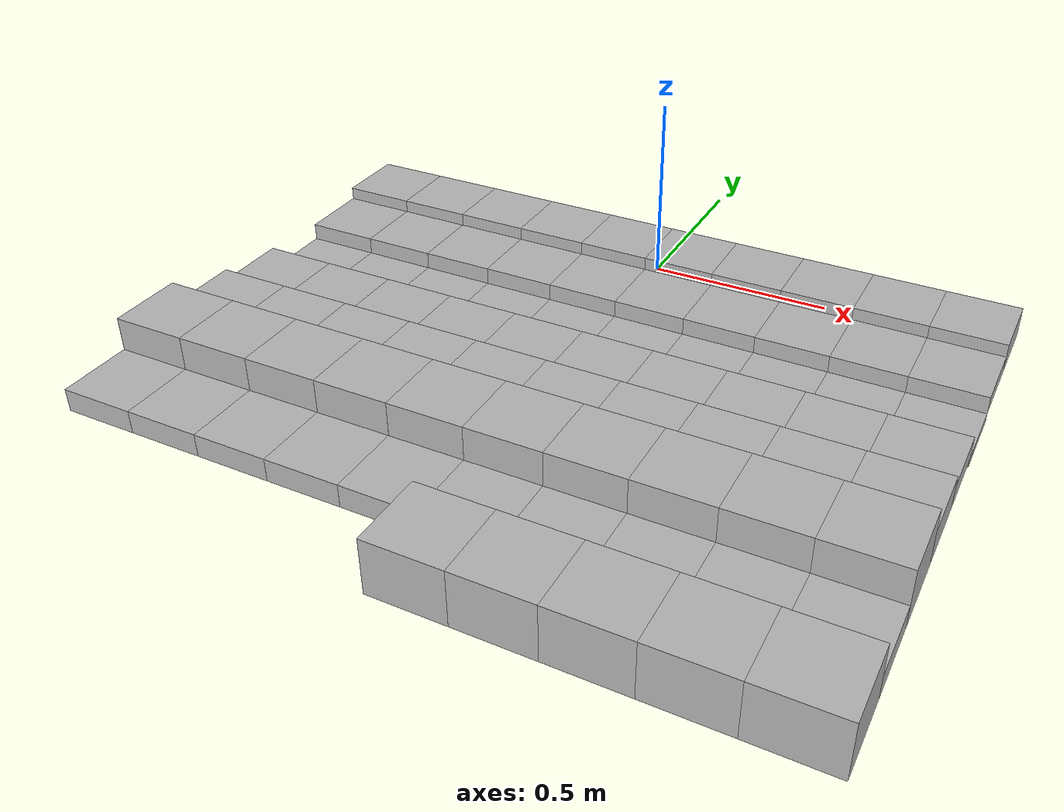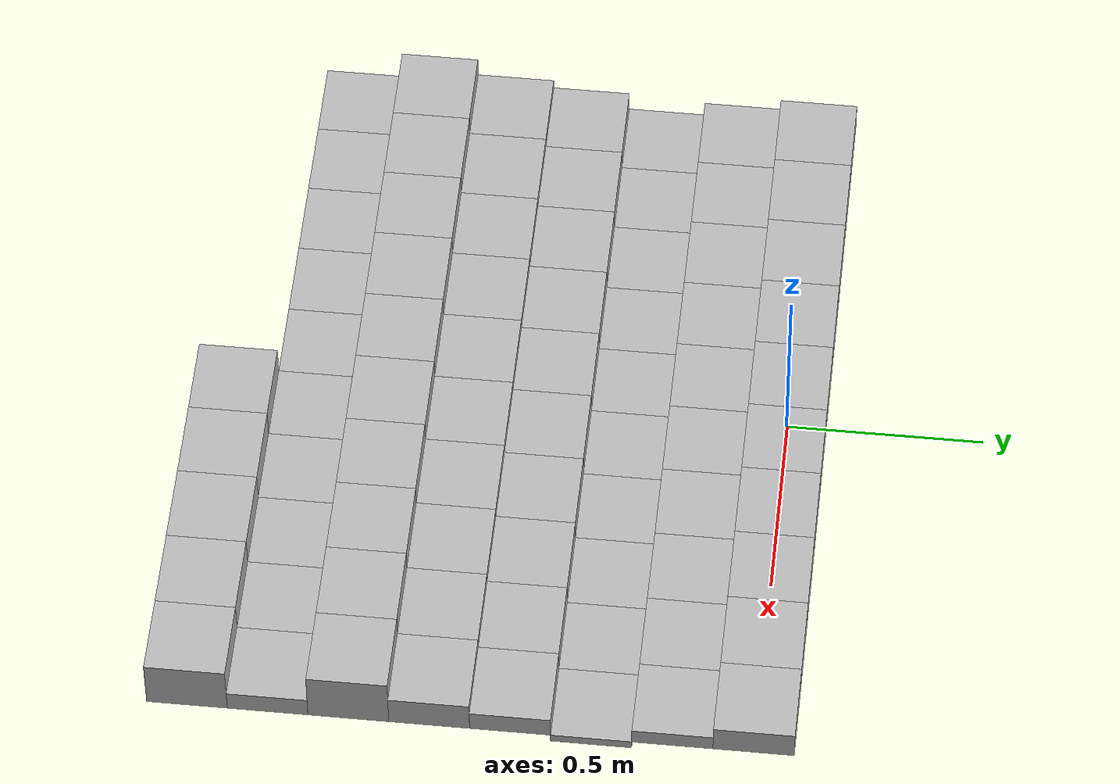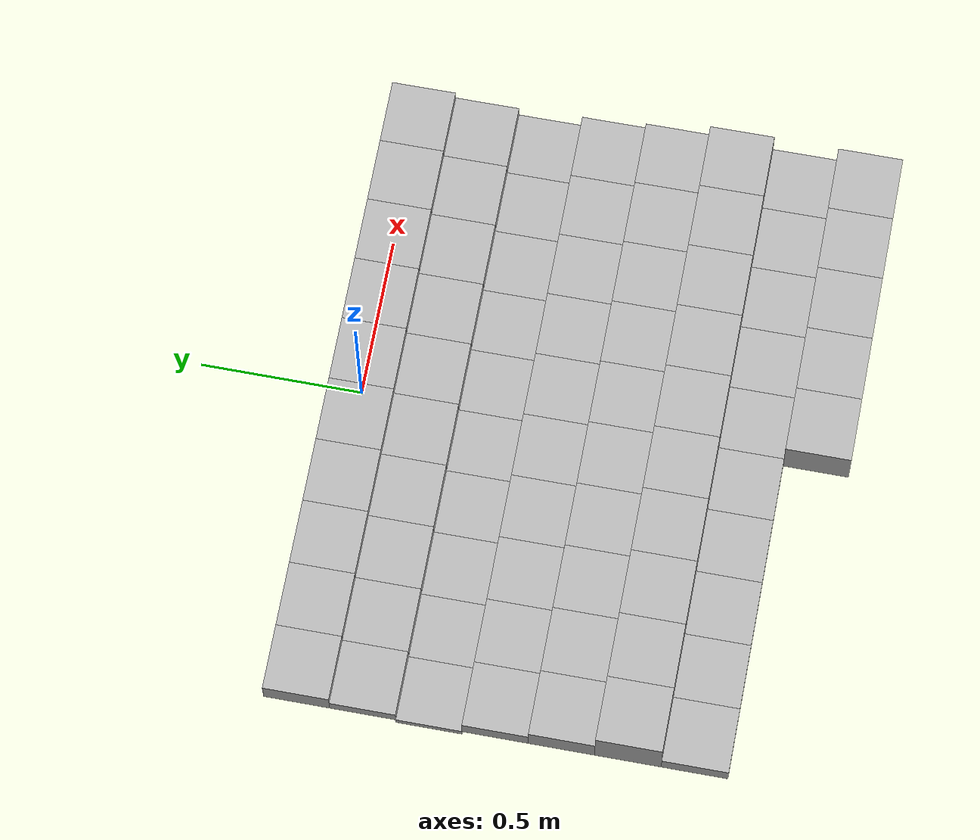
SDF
<sdf version="1.6">
 <model name="Terrain">
  <static>true</static>
  <link name="box_0_0">
   <pose>-0.9 0.0 0.041543660757 0 0 0</pose>
   <inertial>
    <mass>1.0</mass>
    <inertia><ixx>0.0</ixx><ixy>0.0</ixy><ixz>0.0</ixz><iyy>0.0</iyy><iyz>0.0</iyz><izz>0.0</izz></inertia>
   </inertial>
   <collision name="collision"><geometry><box><size>0.2 0.2 0.083087321514</size></box></geometry></collision>
   <visual name="visual"><geometry><box><size>0.2 0.2 0.083087321514</size></box></geometry></visual>
  </link>
  <link name="box_0_1">
   <pose>-0.7 0.0 0.041543660757 0 0 0</pose>
   <inertial>
    <mass>1.0</mass>
    <inertia><ixx>0.0</ixx><ixy>0.0</ixy><ixz>0.0</ixz><iyy>0.0</iyy><iyz>0.0</iyz><izz>0.0</izz></inertia>
   </inertial>
   <collision name="collision"><geometry><box><size>0.2 0.2 0.083087321514</size></box></geometry></collision>
   <visual name="visual"><geometry><box><size>0.2 0.2 0.083087321514</size></box></geometry></visual>
  </link>
  <link name="box_0_2">
   <pose>-0.5 0.0 0.041543660757 0 0 0</pose>
   <inertial>
    <mass>1.0</mass>
    <inertia><ixx>0.0</ixx><ixy>0.0</ixy><ixz>0.0</ixz><iyy>0.0</iyy><iyz>0.0</iyz><izz>0.0</izz></inertia>
   </inertial>
   <collision name="collision"><geometry><box><size>0.2 0.2 0.083087321514</size></box></geometry></collision>
   <visual name="visual"><geometry><box><size>0.2 0.2 0.083087321514</size></box></geometry></visual>
  </link>
  <link name="box_0_3">
   <pose>-0.3 0.0 0.041543660757 0 0 0</pose>
   <inertial>
    <mass>1.0</mass>
    <inertia><ixx>0.0</ixx><ixy>0.0</ixy><ixz>0.0</ixz><iyy>0.0</iyy><iyz>0.0</iyz><izz>0.0</izz></inertia>
   </inertial>
   <collision name="collision"><geometry><box><size>0.2 0.2 0.083087321514</size></box></geometry></collision>
   <visual name="visual"><geometry><box><size>0.2 0.2 0.083087321514</size></box></geometry></visual>
  </link>
  <link name="box_0_4">
   <pose>-0.1 0.0 0.041543660757 0 0 0</pose>
   <inertial>
    <mass>1.0</mass>
    <inertia><ixx>0.0</ixx><ixy>0.0</ixy><ixz>0.0</ixz><iyy>0.0</iyy><iyz>0.0</iyz><izz>0.0</izz></inertia>
   </inertial>
   <collision name="collision"><geometry><box><size>0.2 0.2 0.083087321514</size></box></geometry></collision>
   <visual name="visual"><geometry><box><size>0.2 0.2 0.083087321514</size></box></geometry></visual>
  </link>
  <link name="box_0_5">
   <pose>0.1 0.0 0.041543660757 0 0 0</pose>
   <inertial>
    <mass>1.0</mass>
    <inertia><ixx>0.0</ixx><ixy>0.0</ixy><ixz>0.0</ixz><iyy>0.0</iyy><iyz>0.0</iyz><izz>0.0</izz></inertia>
   </inertial>
   <collision name="collision"><geometry><box><size>0.2 0.2 0.083087321514</size></box></geometry></collision>
   <visual name="visual"><geometry><box><size>0.2 0.2 0.083087321514</size></box></geometry></visual>
  </link>
  <link name="box_0_6">
   <pose>0.3 0.0 0.041543660757 0 0 0</pose>
   <inertial>
    <mass>1.0</mass>
    <inertia><ixx>0.0</ixx><ixy>0.0</ixy><ixz>0.0</ixz><iyy>0.0</iyy><iyz>0.0</iyz><izz>0.0</izz></inertia>
   </inertial>
   <collision name="collision"><geometry><box><size>0.2 0.2 0.083087321514</size></box></geometry></collision>
   <visual name="visual"><geometry><box><size>0.2 0.2 0.083087321514</size></box></geometry></visual>
  </link>
  <link name="box_0_7">
   <pose>0.5 0.0 0.041543660757 0 0 0</pose>
   <inertial>
    <mass>1.0</mass>
    <inertia><ixx>0.0</ixx><ixy>0.0</ixy><ixz>0.0</ixz><iyy>0.0</iyy><iyz>0.0</iyz><izz>0.0</izz></inertia>
   </inertial>
   <collision name="collision"><geometry><box><size>0.2 0.2 0.083087321514</size></box></geometry></collision>
   <visual name="visual"><geometry><box><size>0.2 0.2 0.083087321514</size></box></geometry></visual>
  </link>
  <link name="box_0_8">
   <pose>0.7 0.0 0.041543660757 0 0 0</pose>
   <inertial>
    <mass>1.0</mass>
    <inertia><ixx>0.0</ixx><ixy>0.0</ixy><ixz>0.0</ixz><iyy>0.0</iyy><iyz>0.0</iyz><izz>0.0</izz></inertia>
   </inertial>
   <collision name="collision"><geometry><box><size>0.2 0.2 0.083087321514</size></box></geometry></collision>
   <visual name="visual"><geometry><box><size>0.2 0.2 0.083087321514</size></box></geometry></visual>
  </link>
  <link name="box_0_9">
   <pose>0.9 0.0 0.041543660757 0 0 0</pose>
   <inertial>
    <mass>1.0</mass>
    <inertia><ixx>0.0</ixx><ixy>0.0</ixy><ixz>0.0</ixz><iyy>0.0</iyy><iyz>0.0</iyz><izz>0.0</izz></inertia>
   </inertial>
   <collision name="collision"><geometry><box><size>0.2 0.2 0.083087321514</size></box></geometry></collision>
   <visual name="visual"><geometry><box><size>0.2 0.2 0.083087321514</size></box></geometry></visual>
  </link>
  <link name="box_1_0">
   <pose>-0.9 -0.2 0.0236763575614 0 0 0</pose>
   <inertial>
    <mass>1.0</mass>
    <inertia><ixx>0.0</ixx><ixy>0.0</ixy><ixz>0.0</ixz><iyy>0.0</iyy><iyz>0.0</iyz><izz>0.0</izz></inertia>
   </inertial>
   <collision name="collision"><geometry><box><size>0.2 0.2 0.0473527151228</size></box></geometry></collision>
   <visual name="visual"><geometry><box><size>0.2 0.2 0.0473527151228</size></box></geometry></visual>
  </link>
  <link name="box_1_1">
   <pose>-0.7 -0.2 0.0236763575614 0 0 0</pose>
   <inertial>
    <mass>1.0</mass>
    <inertia><ixx>0.0</ixx><ixy>0.0</ixy><ixz>0.0</ixz><iyy>0.0</iyy><iyz>0.0</iyz><izz>0.0</izz></inertia>
   </inertial>
   <collision name="collision"><geometry><box><size>0.2 0.2 0.0473527151228</size></box></geometry></collision>
   <visual name="visual"><geometry><box><size>0.2 0.2 0.0473527151228</size></box></geometry></visual>
  </link>
  <link name="box_1_2">
   <pose>-0.5 -0.2 0.0236763575614 0 0 0</pose>
   <inertial>
    <mass>1.0</mass>
    <inertia><ixx>0.0</ixx><ixy>0.0</ixy><ixz>0.0</ixz><iyy>0.0</iyy><iyz>0.0</iyz><izz>0.0</izz></inertia>
   </inertial>
   <collision name="collision"><geometry><box><size>0.2 0.2 0.0473527151228</size></box></geometry></collision>
   <visual name="visual"><geometry><box><size>0.2 0.2 0.0473527151228</size></box></geometry></visual>
  </link>
  <link name="box_1_3">
   <pose>-0.3 -0.2 0.0236763575614 0 0 0</pose>
   <inertial>
    <mass>1.0</mass>
    <inertia><ixx>0.0</ixx><ixy>0.0</ixy><ixz>0.0</ixz><iyy>0.0</iyy><iyz>0.0</iyz><izz>0.0</izz></inertia>
   </inertial>
   <collision name="collision"><geometry><box><size>0.2 0.2 0.0473527151228</size></box></geometry></collision>
   <visual name="visual"><geometry><box><size>0.2 0.2 0.0473527151228</size></box></geometry></visual>
  </link>
  <link name="box_1_4">
   <pose>-0.1 -0.2 0.0236763575614 0 0 0</pose>
   <inertial>
    <mass>1.0</mass>
    <inertia><ixx>0.0</ixx><ixy>0.0</ixy><ixz>0.0</ixz><iyy>0.0</iyy><iyz>0.0</iyz><izz>0.0</izz></inertia>
   </inertial>
   <collision name="collision"><geometry><box><size>0.2 0.2 0.0473527151228</size></box></geometry></collision>
   <visual name="visual"><geometry><box><size>0.2 0.2 0.0473527151228</size></box></geometry></visual>
  </link>
  <link name="box_1_5">
   <pose>0.1 -0.2 0.0236763575614 0 0 0</pose>
   <inertial>
    <mass>1.0</mass>
    <inertia><ixx>0.0</ixx><ixy>0.0</ixy><ixz>0.0</ixz><iyy>0.0</iyy><iyz>0.0</iyz><izz>0.0</izz></inertia>
   </inertial>
   <collision name="collision"><geometry><box><size>0.2 0.2 0.0473527151228</size></box></geometry></collision>
   <visual name="visual"><geometry><box><size>0.2 0.2 0.0473527151228</size></box></geometry></visual>
  </link>
  <link name="box_1_6">
   <pose>0.3 -0.2 0.0236763575614 0 0 0</pose>
   <inertial>
    <mass>1.0</mass>
    <inertia><ixx>0.0</ixx><ixy>0.0</ixy><ixz>0.0</ixz><iyy>0.0</iyy><iyz>0.0</iyz><izz>0.0</izz></inertia>
   </inertial>
   <collision name="collision"><geometry><box><size>0.2 0.2 0.0473527151228</size></box></geometry></collision>
   <visual name="visual"><geometry><box><size>0.2 0.2 0.0473527151228</size></box></geometry></visual>
  </link>
  <link name="box_1_7">
   <pose>0.5 -0.2 0.0236763575614 0 0 0</pose>
   <inertial>
    <mass>1.0</mass>
    <inertia><ixx>0.0</ixx><ixy>0.0</ixy><ixz>0.0</ixz><iyy>0.0</iyy><iyz>0.0</iyz><izz>0.0</izz></inertia>
   </inertial>
   <collision name="collision"><geometry><box><size>0.2 0.2 0.0473527151228</size></box></geometry></collision>
   <visual name="visual"><geometry><box><size>0.2 0.2 0.0473527151228</size></box></geometry></visual>
  </link>
  <link name="box_1_8">
   <pose>0.7 -0.2 0.0236763575614 0 0 0</pose>
   <inertial>
    <mass>1.0</mass>
    <inertia><ixx>0.0</ixx><ixy>0.0</ixy><ixz>0.0</ixz><iyy>0.0</iyy><iyz>0.0</iyz><izz>0.0</izz></inertia>
   </inertial>
   <collision name="collision"><geometry><box><size>0.2 0.2 0.0473527151228</size></box></geometry></collision>
   <visual name="visual"><geometry><box><size>0.2 0.2 0.0473527151228</size></box></geometry></visual>
  </link>
  <link name="box_1_9">
   <pose>0.9 -0.2 0.0236763575614 0 0 0</pose>
   <inertial>
    <mass>1.0</mass>
    <inertia><ixx>0.0</ixx><ixy>0.0</ixy><ixz>0.0</ixz><iyy>0.0</iyy><iyz>0.0</iyz><izz>0.0</izz></inertia>
   </inertial>
   <collision name="collision"><geometry><box><size>0.2 0.2 0.0473527151228</size></box></geometry></collision>
   <visual name="visual"><geometry><box><size>0.2 0.2 0.0473527151228</size></box></geometry></visual>
  </link>
  <link name="box_2_0">
   <pose>-0.9 -0.4 -0.0126841246959 0 0 0</pose>
   <inertial>
    <mass>1.0</mass>
    <inertia><ixx>0.0</ixx><ixy>0.0</ixy><ixz>0.0</ixz><iyy>0.0</iyy><iyz>0.0</iyz><izz>0.0</izz></inertia>
   </inertial>
   <collision name="collision"><geometry><box><size>0.2 0.2 -0.0253682493918</size></box></geometry></collision>
   <visual name="visual"><geometry><box><size>0.2 0.2 -0.0253682493918</size></box></geometry></visual>
  </link>
  <link name="box_2_1">
   <pose>-0.7 -0.4 -0.0126841246959 0 0 0</pose>
   <inertial>
    <mass>1.0</mass>
    <inertia><ixx>0.0</ixx><ixy>0.0</ixy><ixz>0.0</ixz><iyy>0.0</iyy><iyz>0.0</iyz><izz>0.0</izz></inertia>
   </inertial>
   <collision name="collision"><geometry><box><size>0.2 0.2 -0.0253682493918</size></box></geometry></collision>
   <visual name="visual"><geometry><box><size>0.2 0.2 -0.0253682493918</size></box></geometry></visual>
  </link>
  <link name="box_2_2">
   <pose>-0.5 -0.4 -0.0126841246959 0 0 0</pose>
   <inertial>
    <mass>1.0</mass>
    <inertia><ixx>0.0</ixx><ixy>0.0</ixy><ixz>0.0</ixz><iyy>0.0</iyy><iyz>0.0</iyz><izz>0.0</izz></inertia>
   </inertial>
   <collision name="collision"><geometry><box><size>0.2 0.2 -0.0253682493918</size></box></geometry></collision>
   <visual name="visual"><geometry><box><size>0.2 0.2 -0.0253682493918</size></box></geometry></visual>
  </link>
  <link name="box_2_3">
   <pose>-0.3 -0.4 -0.0126841246959 0 0 0</pose>
   <inertial>
    <mass>1.0</mass>
    <inertia><ixx>0.0</ixx><ixy>0.0</ixy><ixz>0.0</ixz><iyy>0.0</iyy><iyz>0.0</iyz><izz>0.0</izz></inertia>
   </inertial>
   <collision name="collision"><geometry><box><size>0.2 0.2 -0.0253682493918</size></box></geometry></collision>
   <visual name="visual"><geometry><box><size>0.2 0.2 -0.0253682493918</size></box></geometry></visual>
  </link>
  <link name="box_2_4">
   <pose>-0.1 -0.4 -0.0126841246959 0 0 0</pose>
   <inertial>
    <mass>1.0</mass>
    <inertia><ixx>0.0</ixx><ixy>0.0</ixy><ixz>0.0</ixz><iyy>0.0</iyy><iyz>0.0</iyz><izz>0.0</izz></inertia>
   </inertial>
   <collision name="collision"><geometry><box><size>0.2 0.2 -0.0253682493918</size></box></geometry></collision>
   <visual name="visual"><geometry><box><size>0.2 0.2 -0.0253682493918</size></box></geometry></visual>
  </link>
  <link name="box_2_5">
   <pose>0.1 -0.4 -0.0126841246959 0 0 0</pose>
   <inertial>
    <mass>1.0</mass>
    <inertia><ixx>0.0</ixx><ixy>0.0</ixy><ixz>0.0</ixz><iyy>0.0</iyy><iyz>0.0</iyz><izz>0.0</izz></inertia>
   </inertial>
   <collision name="collision"><geometry><box><size>0.2 0.2 -0.0253682493918</size></box></geometry></collision>
   <visual name="visual"><geometry><box><size>0.2 0.2 -0.0253682493918</size></box></geometry></visual>
  </link>
  <link name="box_2_6">
   <pose>0.3 -0.4 -0.0126841246959 0 0 0</pose>
   <inertial>
    <mass>1.0</mass>
    <inertia><ixx>0.0</ixx><ixy>0.0</ixy><ixz>0.0</ixz><iyy>0.0</iyy><iyz>0.0</iyz><izz>0.0</izz></inertia>
   </inertial>
   <collision name="collision"><geometry><box><size>0.2 0.2 -0.0253682493918</size></box></geometry></collision>
   <visual name="visual"><geometry><box><size>0.2 0.2 -0.0253682493918</size></box></geometry></visual>
  </link>
  <link name="box_2_7">
   <pose>0.5 -0.4 -0.0126841246959 0 0 0</pose>
   <inertial>
    <mass>1.0</mass>
    <inertia><ixx>0.0</ixx><ixy>0.0</ixy><ixz>0.0</ixz><iyy>0.0</iyy><iyz>0.0</iyz><izz>0.0</izz></inertia>
   </inertial>
   <collision name="collision"><geometry><box><size>0.2 0.2 -0.0253682493918</size></box></geometry></collision>
   <visual name="visual"><geometry><box><size>0.2 0.2 -0.0253682493918</size></box></geometry></visual>
  </link>
  <link name="box_2_8">
   <pose>0.7 -0.4 -0.0126841246959 0 0 0</pose>
   <inertial>
    <mass>1.0</mass>
    <inertia><ixx>0.0</ixx><ixy>0.0</ixy><ixz>0.0</ixz><iyy>0.0</iyy><iyz>0.0</iyz><izz>0.0</izz></inertia>
   </inertial>
   <collision name="collision"><geometry><box><size>0.2 0.2 -0.0253682493918</size></box></geometry></collision>
   <visual name="visual"><geometry><box><size>0.2 0.2 -0.0253682493918</size></box></geometry></visual>
  </link>
  <link name="box_2_9">
   <pose>0.9 -0.4 -0.0126841246959 0 0 0</pose>
   <inertial>
    <mass>1.0</mass>
    <inertia><ixx>0.0</ixx><ixy>0.0</ixy><ixz>0.0</ixz><iyy>0.0</iyy><iyz>0.0</iyz><izz>0.0</izz></inertia>
   </inertial>
   <collision name="collision"><geometry><box><size>0.2 0.2 -0.0253682493918</size></box></geometry></collision>
   <visual name="visual"><geometry><box><size>0.2 0.2 -0.0253682493918</size></box></geometry></visual>
  </link>
  <link name="box_3_0">
   <pose>-0.9 -0.6 0.0315941614669 0 0 0</pose>
   <inertial>
    <mass>1.0</mass>
    <inertia><ixx>0.0</ixx><ixy>0.0</ixy><ixz>0.0</ixz><iyy>0.0</iyy><iyz>0.0</iyz><izz>0.0</izz></inertia>
   </inertial>
   <collision name="collision"><geometry><box><size>0.2 0.2 0.0631883229338</size></box></geometry></collision>
   <visual name="visual"><geometry><box><size>0.2 0.2 0.0631883229338</size></box></geometry></visual>
  </link>
  <link name="box_3_1">
   <pose>-0.7 -0.6 0.0315941614669 0 0 0</pose>
   <inertial>
    <mass>1.0</mass>
    <inertia><ixx>0.0</ixx><ixy>0.0</ixy><ixz>0.0</ixz><iyy>0.0</iyy><iyz>0.0</iyz><izz>0.0</izz></inertia>
   </inertial>
   <collision name="collision"><geometry><box><size>0.2 0.2 0.0631883229338</size></box></geometry></collision>
   <visual name="visual"><geometry><box><size>0.2 0.2 0.0631883229338</size></box></geometry></visual>
  </link>
  <link name="box_3_2">
   <pose>-0.5 -0.6 0.0315941614669 0 0 0</pose>
   <inertial>
    <mass>1.0</mass>
    <inertia><ixx>0.0</ixx><ixy>0.0</ixy><ixz>0.0</ixz><iyy>0.0</iyy><iyz>0.0</iyz><izz>0.0</izz></inertia>
   </inertial>
   <collision name="collision"><geometry><box><size>0.2 0.2 0.0631883229338</size></box></geometry></collision>
   <visual name="visual"><geometry><box><size>0.2 0.2 0.0631883229338</size></box></geometry></visual>
  </link>
  <link name="box_3_3">
   <pose>-0.3 -0.6 0.0315941614669 0 0 0</pose>
   <inertial>
    <mass>1.0</mass>
    <inertia><ixx>0.0</ixx><ixy>0.0</ixy><ixz>0.0</ixz><iyy>0.0</iyy><iyz>0.0</iyz><izz>0.0</izz></inertia>
   </inertial>
   <collision name="collision"><geometry><box><size>0.2 0.2 0.0631883229338</size></box></geometry></collision>
   <visual name="visual"><geometry><box><size>0.2 0.2 0.0631883229338</size></box></geometry></visual>
  </link>
  <link name="box_3_4">
   <pose>-0.1 -0.6 0.0315941614669 0 0 0</pose>
   <inertial>
    <mass>1.0</mass>
    <inertia><ixx>0.0</ixx><ixy>0.0</ixy><ixz>0.0</ixz><iyy>0.0</iyy><iyz>0.0</iyz><izz>0.0</izz></inertia>
   </inertial>
   <collision name="collision"><geometry><box><size>0.2 0.2 0.0631883229338</size></box></geometry></collision>
   <visual name="visual"><geometry><box><size>0.2 0.2 0.0631883229338</size></box></geometry></visual>
  </link>
  <link name="box_3_5">
   <pose>0.1 -0.6 0.0315941614669 0 0 0</pose>
   <inertial>
    <mass>1.0</mass>
    <inertia><ixx>0.0</ixx><ixy>0.0</ixy><ixz>0.0</ixz><iyy>0.0</iyy><iyz>0.0</iyz><izz>0.0</izz></inertia>
   </inertial>
   <collision name="collision"><geometry><box><size>0.2 0.2 0.0631883229338</size></box></geometry></collision>
   <visual name="visual"><geometry><box><size>0.2 0.2 0.0631883229338</size></box></geometry></visual>
  </link>
  <link name="box_3_6">
   <pose>0.3 -0.6 0.0315941614669 0 0 0</pose>
   <inertial>
    <mass>1.0</mass>
    <inertia><ixx>0.0</ixx><ixy>0.0</ixy><ixz>0.0</ixz><iyy>0.0</iyy><iyz>0.0</iyz><izz>0.0</izz></inertia>
   </inertial>
   <collision name="collision"><geometry><box><size>0.2 0.2 0.0631883229338</size></box></geometry></collision>
   <visual name="visual"><geometry><box><size>0.2 0.2 0.0631883229338</size></box></geometry></visual>
  </link>
  <link name="box_3_7">
   <pose>0.5 -0.6 0.0315941614669 0 0 0</pose>
   <inertial>
    <mass>1.0</mass>
    <inertia><ixx>0.0</ixx><ixy>0.0</ixy><ixz>0.0</ixz><iyy>0.0</iyy><iyz>0.0</iyz><izz>0.0</izz></inertia>
   </inertial>
   <collision name="collision"><geometry><box><size>0.2 0.2 0.0631883229338</size></box></geometry></collision>
   <visual name="visual"><geometry><box><size>0.2 0.2 0.0631883229338</size></box></geometry></visual>
  </link>
  <link name="box_3_8">
   <pose>0.7 -0.6 0.0315941614669 0 0 0</pose>
   <inertial>
    <mass>1.0</mass>
    <inertia><ixx>0.0</ixx><ixy>0.0</ixy><ixz>0.0</ixz><iyy>0.0</iyy><iyz>0.0</iyz><izz>0.0</izz></inertia>
   </inertial>
   <collision name="collision"><geometry><box><size>0.2 0.2 0.0631883229338</size></box></geometry></collision>
   <visual name="visual"><geometry><box><size>0.2 0.2 0.0631883229338</size></box></geometry></visual>
  </link>
  <link name="box_3_9">
   <pose>0.9 -0.6 0.0315941614669 0 0 0</pose>
   <inertial>
    <mass>1.0</mass>
    <inertia><ixx>0.0</ixx><ixy>0.0</ixy><ixz>0.0</ixz><iyy>0.0</iyy><iyz>0.0</iyz><izz>0.0</izz></inertia>
   </inertial>
   <collision name="collision"><geometry><box><size>0.2 0.2 0.0631883229338</size></box></geometry></collision>
   <visual name="visual"><geometry><box><size>0.2 0.2 0.0631883229338</size></box></geometry></visual>
  </link>
  <link name="box_4_0">
   <pose>-0.9 -0.8 0.0463323221949 0 0 0</pose>
   <inertial>
    <mass>1.0</mass>
    <inertia><ixx>0.0</ixx><ixy>0.0</ixy><ixz>0.0</ixz><iyy>0.0</iyy><iyz>0.0</iyz><izz>0.0</izz></inertia>
   </inertial>
   <collision name="collision"><geometry><box><size>0.2 0.2 0.0926646443898</size></box></geometry></collision>
   <visual name="visual"><geometry><box><size>0.2 0.2 0.0926646443898</size></box></geometry></visual>
  </link>
  <link name="box_4_1">
   <pose>-0.7 -0.8 0.0463323221949 0 0 0</pose>
   <inertial>
    <mass>1.0</mass>
    <inertia><ixx>0.0</ixx><ixy>0.0</ixy><ixz>0.0</ixz><iyy>0.0</iyy><iyz>0.0</iyz><izz>0.0</izz></inertia>
   </inertial>
   <collision name="collision"><geometry><box><size>0.2 0.2 0.0926646443898</size></box></geometry></collision>
   <visual name="visual"><geometry><box><size>0.2 0.2 0.0926646443898</size></box></geometry></visual>
  </link>
  <link name="box_4_2">
   <pose>-0.5 -0.8 0.0463323221949 0 0 0</pose>
   <inertial>
    <mass>1.0</mass>
    <inertia><ixx>0.0</ixx><ixy>0.0</ixy><ixz>0.0</ixz><iyy>0.0</iyy><iyz>0.0</iyz><izz>0.0</izz></inertia>
   </inertial>
   <collision name="collision"><geometry><box><size>0.2 0.2 0.0926646443898</size></box></geometry></collision>
   <visual name="visual"><geometry><box><size>0.2 0.2 0.0926646443898</size></box></geometry></visual>
  </link>
  <link name="box_4_3">
   <pose>-0.3 -0.8 0.0463323221949 0 0 0</pose>
   <inertial>
    <mass>1.0</mass>
    <inertia><ixx>0.0</ixx><ixy>0.0</ixy><ixz>0.0</ixz><iyy>0.0</iyy><iyz>0.0</iyz><izz>0.0</izz></inertia>
   </inertial>
   <collision name="collision"><geometry><box><size>0.2 0.2 0.0926646443898</size></box></geometry></collision>
   <visual name="visual"><geometry><box><size>0.2 0.2 0.0926646443898</size></box></geometry></visual>
  </link>
  <link name="box_4_4">
   <pose>-0.1 -0.8 0.0463323221949 0 0 0</pose>
   <inertial>
    <mass>1.0</mass>
    <inertia><ixx>0.0</ixx><ixy>0.0</ixy><ixz>0.0</ixz><iyy>0.0</iyy><iyz>0.0</iyz><izz>0.0</izz></inertia>
   </inertial>
   <collision name="collision"><geometry><box><size>0.2 0.2 0.0926646443898</size></box></geometry></collision>
   <visual name="visual"><geometry><box><size>0.2 0.2 0.0926646443898</size></box></geometry></visual>
  </link>
  <link name="box_4_5">
   <pose>0.1 -0.8 0.0463323221949 0 0 0</pose>
   <inertial>
    <mass>1.0</mass>
    <inertia><ixx>0.0</ixx><ixy>0.0</ixy><ixz>0.0</ixz><iyy>0.0</iyy><iyz>0.0</iyz><izz>0.0</izz></inertia>
   </inertial>
   <collision name="collision"><geometry><box><size>0.2 0.2 0.0926646443898</size></box></geometry></collision>
   <visual name="visual"><geometry><box><size>0.2 0.2 0.0926646443898</size></box></geometry></visual>
  </link>
  <link name="box_4_6">
   <pose>0.3 -0.8 0.0463323221949 0 0 0</pose>
   <inertial>
    <mass>1.0</mass>
    <inertia><ixx>0.0</ixx><ixy>0.0</ixy><ixz>0.0</ixz><iyy>0.0</iyy><iyz>0.0</iyz><izz>0.0</izz></inertia>
   </inertial>
   <collision name="collision"><geometry><box><size>0.2 0.2 0.0926646443898</size></box></geometry></collision>
   <visual name="visual"><geometry><box><size>0.2 0.2 0.0926646443898</size></box></geometry></visual>
  </link>
  <link name="box_4_7">
   <pose>0.5 -0.8 0.0463323221949 0 0 0</pose>
   <inertial>
    <mass>1.0</mass>
    <inertia><ixx>0.0</ixx><ixy>0.0</ixy><ixz>0.0</ixz><iyy>0.0</iyy><iyz>0.0</iyz><izz>0.0</izz></inertia>
   </inertial>
   <collision name="collision"><geometry><box><size>0.2 0.2 0.0926646443898</size></box></geometry></collision>
   <visual name="visual"><geometry><box><size>0.2 0.2 0.0926646443898</size></box></geometry></visual>
  </link>
  <link name="box_4_8">
   <pose>0.7 -0.8 0.0463323221949 0 0 0</pose>
   <inertial>
    <mass>1.0</mass>
    <inertia><ixx>0.0</ixx><ixy>0.0</ixy><ixz>0.0</ixz><iyy>0.0</iyy><iyz>0.0</iyz><izz>0.0</izz></inertia>
   </inertial>
   <collision name="collision"><geometry><box><size>0.2 0.2 0.0926646443898</size></box></geometry></collision>
   <visual name="visual"><geometry><box><size>0.2 0.2 0.0926646443898</size></box></geometry></visual>
  </link>
  <link name="box_4_9">
   <pose>0.9 -0.8 0.0463323221949 0 0 0</pose>
   <inertial>
    <mass>1.0</mass>
    <inertia><ixx>0.0</ixx><ixy>0.0</ixy><ixz>0.0</ixz><iyy>0.0</iyy><iyz>0.0</iyz><izz>0.0</izz></inertia>
   </inertial>
   <collision name="collision"><geometry><box><size>0.2 0.2 0.0926646443898</size></box></geometry></collision>
   <visual name="visual"><geometry><box><size>0.2 0.2 0.0926646443898</size></box></geometry></visual>
  </link>
  <link name="box_5_0">
   <pose>-0.9 -1.0 0.0767504613067 0 0 0</pose>
   <inertial>
    <mass>1.0</mass>
    <inertia><ixx>0.0</ixx><ixy>0.0</ixy><ixz>0.0</ixz><iyy>0.0</iyy><iyz>0.0</iyz><izz>0.0</izz></inertia>
   </inertial>
   <collision name="collision"><geometry><box><size>0.2 0.2 0.153500922613</size></box></geometry></collision>
   <visual name="visual"><geometry><box><size>0.2 0.2 0.153500922613</size></box></geometry></visual>
  </link>
  <link name="box_5_1">
   <pose>-0.7 -1.0 0.0767504613067 0 0 0</pose>
   <inertial>
    <mass>1.0</mass>
    <inertia><ixx>0.0</ixx><ixy>0.0</ixy><ixz>0.0</ixz><iyy>0.0</iyy><iyz>0.0</iyz><izz>0.0</izz></inertia>
   </inertial>
   <collision name="collision"><geometry><box><size>0.2 0.2 0.153500922613</size></box></geometry></collision>
   <visual name="visual"><geometry><box><size>0.2 0.2 0.153500922613</size></box></geometry></visual>
  </link>
  <link name="box_5_2">
   <pose>-0.5 -1.0 0.0767504613067 0 0 0</pose>
   <inertial>
    <mass>1.0</mass>
    <inertia><ixx>0.0</ixx><ixy>0.0</ixy><ixz>0.0</ixz><iyy>0.0</iyy><iyz>0.0</iyz><izz>0.0</izz></inertia>
   </inertial>
   <collision name="collision"><geometry><box><size>0.2 0.2 0.153500922613</size></box></geometry></collision>
   <visual name="visual"><geometry><box><size>0.2 0.2 0.153500922613</size></box></geometry></visual>
  </link>
  <link name="box_5_3">
   <pose>-0.3 -1.0 0.0767504613067 0 0 0</pose>
   <inertial>
    <mass>1.0</mass>
    <inertia><ixx>0.0</ixx><ixy>0.0</ixy><ixz>0.0</ixz><iyy>0.0</iyy><iyz>0.0</iyz><izz>0.0</izz></inertia>
   </inertial>
   <collision name="collision"><geometry><box><size>0.2 0.2 0.153500922613</size></box></geometry></collision>
   <visual name="visual"><geometry><box><size>0.2 0.2 0.153500922613</size></box></geometry></visual>
  </link>
  <link name="box_5_4">
   <pose>-0.1 -1.0 0.0767504613067 0 0 0</pose>
   <inertial>
    <mass>1.0</mass>
    <inertia><ixx>0.0</ixx><ixy>0.0</ixy><ixz>0.0</ixz><iyy>0.0</iyy><iyz>0.0</iyz><izz>0.0</izz></inertia>
   </inertial>
   <collision name="collision"><geometry><box><size>0.2 0.2 0.153500922613</size></box></geometry></collision>
   <visual name="visual"><geometry><box><size>0.2 0.2 0.153500922613</size></box></geometry></visual>
  </link>
  <link name="box_5_5">
   <pose>0.1 -1.0 0.0767504613067 0 0 0</pose>
   <inertial>
    <mass>1.0</mass>
    <inertia><ixx>0.0</ixx><ixy>0.0</ixy><ixz>0.0</ixz><iyy>0.0</iyy><iyz>0.0</iyz><izz>0.0</izz></inertia>
   </inertial>
   <collision name="collision"><geometry><box><size>0.2 0.2 0.153500922613</size></box></geometry></collision>
   <visual name="visual"><geometry><box><size>0.2 0.2 0.153500922613</size></box></geometry></visual>
  </link>
  <link name="box_5_6">
   <pose>0.3 -1.0 0.0767504613067 0 0 0</pose>
   <inertial>
    <mass>1.0</mass>
    <inertia><ixx>0.0</ixx><ixy>0.0</ixy><ixz>0.0</ixz><iyy>0.0</iyy><iyz>0.0</iyz><izz>0.0</izz></inertia>
   </inertial>
   <collision name="collision"><geometry><box><size>0.2 0.2 0.153500922613</size></box></geometry></collision>
   <visual name="visual"><geometry><box><size>0.2 0.2 0.153500922613</size></box></geometry></visual>
  </link>
  <link name="box_5_7">
   <pose>0.5 -1.0 0.0767504613067 0 0 0</pose>
   <inertial>
    <mass>1.0</mass>
    <inertia><ixx>0.0</ixx><ixy>0.0</ixy><ixz>0.0</ixz><iyy>0.0</iyy><iyz>0.0</iyz><izz>0.0</izz></inertia>
   </inertial>
   <collision name="collision"><geometry><box><size>0.2 0.2 0.153500922613</size></box></geometry></collision>
   <visual name="visual"><geometry><box><size>0.2 0.2 0.153500922613</size></box></geometry></visual>
  </link>
  <link name="box_5_8">
   <pose>0.7 -1.0 0.0767504613067 0 0 0</pose>
   <inertial>
    <mass>1.0</mass>
    <inertia><ixx>0.0</ixx><ixy>0.0</ixy><ixz>0.0</ixz><iyy>0.0</iyy><iyz>0.0</iyz><izz>0.0</izz></inertia>
   </inertial>
   <collision name="collision"><geometry><box><size>0.2 0.2 0.153500922613</size></box></geometry></collision>
   <visual name="visual"><geometry><box><size>0.2 0.2 0.153500922613</size></box></geometry></visual>
  </link>
  <link name="box_5_9">
   <pose>0.9 -1.0 0.0767504613067 0 0 0</pose>
   <inertial>
    <mass>1.0</mass>
    <inertia><ixx>0.0</ixx><ixy>0.0</ixy><ixz>0.0</ixz><iyy>0.0</iyy><iyz>0.0</iyz><izz>0.0</izz></inertia>
   </inertial>
   <collision name="collision"><geometry><box><size>0.2 0.2 0.153500922613</size></box></geometry></collision>
   <visual name="visual"><geometry><box><size>0.2 0.2 0.153500922613</size></box></geometry></visual>
  </link>
  <link name="box_6_0">
   <pose>-0.9 -1.2 0.0309598111964 0 0 0</pose>
   <inertial>
    <mass>1.0</mass>
    <inertia><ixx>0.0</ixx><ixy>0.0</ixy><ixz>0.0</ixz><iyy>0.0</iyy><iyz>0.0</iyz><izz>0.0</izz></inertia>
   </inertial>
   <collision name="collision"><geometry><box><size>0.2 0.2 0.0619196223927</size></box></geometry></collision>
   <visual name="visual"><geometry><box><size>0.2 0.2 0.0619196223927</size></box></geometry></visual>
  </link>
  <link name="box_6_1">
   <pose>-0.7 -1.2 0.0309598111964 0 0 0</pose>
   <inertial>
    <mass>1.0</mass>
    <inertia><ixx>0.0</ixx><ixy>0.0</ixy><ixz>0.0</ixz><iyy>0.0</iyy><iyz>0.0</iyz><izz>0.0</izz></inertia>
   </inertial>
   <collision name="collision"><geometry><box><size>0.2 0.2 0.0619196223927</size></box></geometry></collision>
   <visual name="visual"><geometry><box><size>0.2 0.2 0.0619196223927</size></box></geometry></visual>
  </link>
  <link name="box_6_2">
   <pose>-0.5 -1.2 0.0309598111964 0 0 0</pose>
   <inertial>
    <mass>1.0</mass>
    <inertia><ixx>0.0</ixx><ixy>0.0</ixy><ixz>0.0</ixz><iyy>0.0</iyy><iyz>0.0</iyz><izz>0.0</izz></inertia>
   </inertial>
   <collision name="collision"><geometry><box><size>0.2 0.2 0.0619196223927</size></box></geometry></collision>
   <visual name="visual"><geometry><box><size>0.2 0.2 0.0619196223927</size></box></geometry></visual>
  </link>
  <link name="box_6_3">
   <pose>-0.3 -1.2 0.0309598111964 0 0 0</pose>
   <inertial>
    <mass>1.0</mass>
    <inertia><ixx>0.0</ixx><ixy>0.0</ixy><ixz>0.0</ixz><iyy>0.0</iyy><iyz>0.0</iyz><izz>0.0</izz></inertia>
   </inertial>
   <collision name="collision"><geometry><box><size>0.2 0.2 0.0619196223927</size></box></geometry></collision>
   <visual name="visual"><geometry><box><size>0.2 0.2 0.0619196223927</size></box></geometry></visual>
  </link>
  <link name="box_6_4">
   <pose>-0.1 -1.2 0.0309598111964 0 0 0</pose>
   <inertial>
    <mass>1.0</mass>
    <inertia><ixx>0.0</ixx><ixy>0.0</ixy><ixz>0.0</ixz><iyy>0.0</iyy><iyz>0.0</iyz><izz>0.0</izz></inertia>
   </inertial>
   <collision name="collision"><geometry><box><size>0.2 0.2 0.0619196223927</size></box></geometry></collision>
   <visual name="visual"><geometry><box><size>0.2 0.2 0.0619196223927</size></box></geometry></visual>
  </link>
  <link name="box_6_5">
   <pose>0.1 -1.2 0.0309598111964 0 0 0</pose>
   <inertial>
    <mass>1.0</mass>
    <inertia><ixx>0.0</ixx><ixy>0.0</ixy><ixz>0.0</ixz><iyy>0.0</iyy><iyz>0.0</iyz><izz>0.0</izz></inertia>
   </inertial>
   <collision name="collision"><geometry><box><size>0.2 0.2 0.0619196223927</size></box></geometry></collision>
   <visual name="visual"><geometry><box><size>0.2 0.2 0.0619196223927</size></box></geometry></visual>
  </link>
  <link name="box_6_6">
   <pose>0.3 -1.2 0.0309598111964 0 0 0</pose>
   <inertial>
    <mass>1.0</mass>
    <inertia><ixx>0.0</ixx><ixy>0.0</ixy><ixz>0.0</ixz><iyy>0.0</iyy><iyz>0.0</iyz><izz>0.0</izz></inertia>
   </inertial>
   <collision name="collision"><geometry><box><size>0.2 0.2 0.0619196223927</size></box></geometry></collision>
   <visual name="visual"><geometry><box><size>0.2 0.2 0.0619196223927</size></box></geometry></visual>
  </link>
  <link name="box_6_7">
   <pose>0.5 -1.2 0.0309598111964 0 0 0</pose>
   <inertial>
    <mass>1.0</mass>
    <inertia><ixx>0.0</ixx><ixy>0.0</ixy><ixz>0.0</ixz><iyy>0.0</iyy><iyz>0.0</iyz><izz>0.0</izz></inertia>
   </inertial>
   <collision name="collision"><geometry><box><size>0.2 0.2 0.0619196223927</size></box></geometry></collision>
   <visual name="visual"><geometry><box><size>0.2 0.2 0.0619196223927</size></box></geometry></visual>
  </link>
  <link name="box_6_8">
   <pose>0.7 -1.2 0.0309598111964 0 0 0</pose>
   <inertial>
    <mass>1.0</mass>
    <inertia><ixx>0.0</ixx><ixy>0.0</ixy><ixz>0.0</ixz><iyy>0.0</iyy><iyz>0.0</iyz><izz>0.0</izz></inertia>
   </inertial>
   <collision name="collision"><geometry><box><size>0.2 0.2 0.0619196223927</size></box></geometry></collision>
   <visual name="visual"><geometry><box><size>0.2 0.2 0.0619196223927</size></box></geometry></visual>
  </link>
  <link name="box_6_9">
   <pose>0.9 -1.2 0.0309598111964 0 0 0</pose>
   <inertial>
    <mass>1.0</mass>
    <inertia><ixx>0.0</ixx><ixy>0.0</ixy><ixz>0.0</ixz><iyy>0.0</iyy><iyz>0.0</iyz><izz>0.0</izz></inertia>
   </inertial>
   <collision name="collision"><geometry><box><size>0.2 0.2 0.0619196223927</size></box></geometry></collision>
   <visual name="visual"><geometry><box><size>0.2 0.2 0.0619196223927</size></box></geometry></visual>
  </link>
  <link name="box_7_5">
   <pose>0.1 -1.4 0.0736009111206 0 0 0</pose>
   <inertial>
    <mass>1.0</mass>
    <inertia><ixx>0.0</ixx><ixy>0.0</ixy><ixz>0.0</ixz><iyy>0.0</iyy><iyz>0.0</iyz><izz>0.0</izz></inertia>
   </inertial>
   <collision name="collision"><geometry><box><size>0.2 0.2 0.147201822241</size></box></geometry></collision>
   <visual name="visual"><geometry><box><size>0.2 0.2 0.147201822241</size></box></geometry></visual>
  </link>
  <link name="box_7_6">
   <pose>0.3 -1.4 0.0736009111206 0 0 0</pose>
   <inertial>
    <mass>1.0</mass>
    <inertia><ixx>0.0</ixx><ixy>0.0</ixy><ixz>0.0</ixz><iyy>0.0</iyy><iyz>0.0</iyz><izz>0.0</izz></inertia>
   </inertial>
   <collision name="collision"><geometry><box><size>0.2 0.2 0.147201822241</size></box></geometry></collision>
   <visual name="visual"><geometry><box><size>0.2 0.2 0.147201822241</size></box></geometry></visual>
  </link>
  <link name="box_7_7">
   <pose>0.5 -1.4 0.0736009111206 0 0 0</pose>
   <inertial>
    <mass>1.0</mass>
    <inertia><ixx>0.0</ixx><ixy>0.0</ixy><ixz>0.0</ixz><iyy>0.0</iyy><iyz>0.0</iyz><izz>0.0</izz></inertia>
   </inertial>
   <collision name="collision"><geometry><box><size>0.2 0.2 0.147201822241</size></box></geometry></collision>
   <visual name="visual"><geometry><box><size>0.2 0.2 0.147201822241</size></box></geometry></visual>
  </link>
  <link name="box_7_8">
   <pose>0.7 -1.4 0.0736009111206 0 0 0</pose>
   <inertial>
    <mass>1.0</mass>
    <inertia><ixx>0.0</ixx><ixy>0.0</ixy><ixz>0.0</ixz><iyy>0.0</iyy><iyz>0.0</iyz><izz>0.0</izz></inertia>
   </inertial>
   <collision name="collision"><geometry><box><size>0.2 0.2 0.147201822241</size></box></geometry></collision>
   <visual name="visual"><geometry><box><size>0.2 0.2 0.147201822241</size></box></geometry></visual>
  </link>
  <link name="box_7_9">
   <pose>0.9 -1.4 0.0736009111206 0 0 0</pose>
   <inertial>
    <mass>1.0</mass>
    <inertia><ixx>0.0</ixx><ixy>0.0</ixy><ixz>0.0</ixz><iyy>0.0</iyy><iyz>0.0</iyz><izz>0.0</izz></inertia>
   </inertial>
   <collision name="collision"><geometry><box><size>0.2 0.2 0.147201822241</size></box></geometry></collision>
   <visual name="visual"><geometry><box><size>0.2 0.2 0.147201822241</size></box></geometry></visual>
  </link>
 </model>
</sdf>
